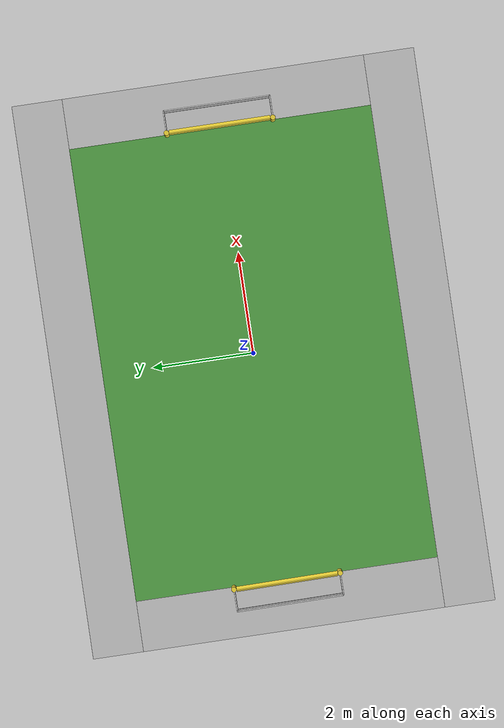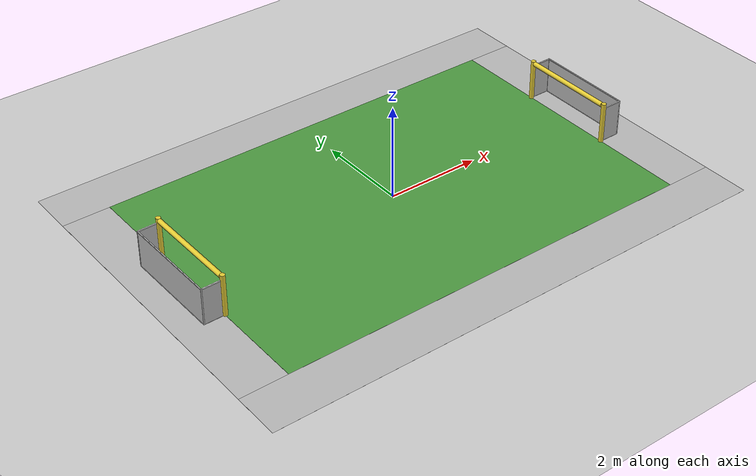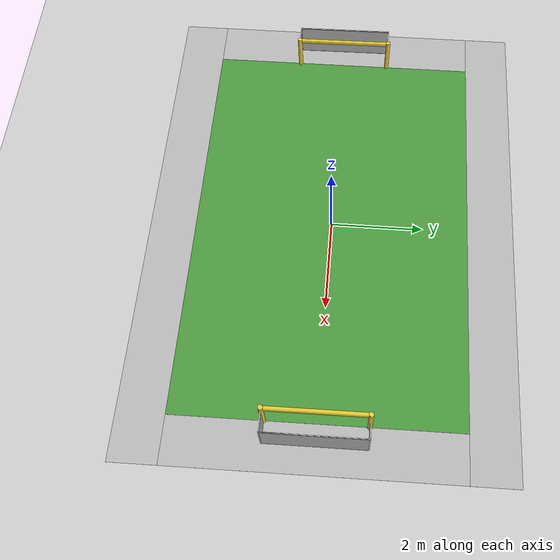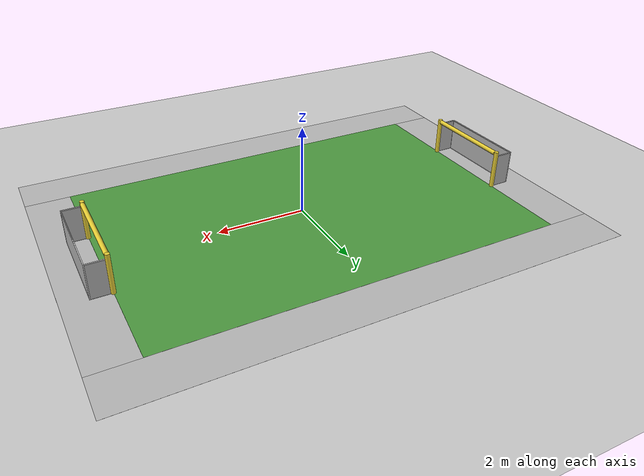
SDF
<sdf version="1.6">
 <world name="default">
  <light name="sun" type="directional">
   <pose>0 0 10 0 -0 0</pose>
   <diffuse>0.8 0.8 0.8 1</diffuse>
   <specular>0.1 0.1 0.1 1</specular>
   <attenuation>
    <range>1000</range>
    <constant>0.9</constant>
    <linear>0.01</linear>
    <quadratic>0.001</quadratic>
   </attenuation>
   <direction>-0.5 0.5 -1</direction>
  </light>
  <model name="ground_plane">
   <static>1</static>
   <link name="link">
    <collision name="collision">
     <geometry><plane><normal>0 0 1</normal><size>100 100</size></plane></geometry>
     <surface>
      <friction><ode><mu>1000</mu><mu2>500</mu2><slip1>1.0</slip1><slip2>1.0</slip2></ode></friction>
     </surface>
    </collision>
    <visual name="visual">
     <cast_shadows>0</cast_shadows>
     <geometry><plane><normal>0 0 1</normal><size>100 100</size></plane></geometry>
     <material>
      <script><uri>file://media/materials/scripts/gazebo.material</uri><name>Gazebo/Grey</name></script>
     </material>
    </visual>
   </link>
  </model>
  <gravity>0 0 -9.8</gravity>
  <magnetic_field>6e-06 2.3e-05 -4.2e-05</magnetic_field>
  <atmosphere type="adiabatic"/>
  <physics name="default_physics" default="0" type="ode">
   <max_step_size>0.001</max_step_size>
   <real_time_factor>1</real_time_factor>
   <real_time_update_rate>1000</real_time_update_rate>
  </physics>
  <scene><ambient>0.4 0.4 0.4 1</ambient><background>0.7 0.7 0.7 1</background><shadows>1</shadows></scene>
  <spherical_coordinates>
   <surface_model>EARTH_WGS84</surface_model>
   <latitude_deg>0</latitude_deg>
   <longitude_deg>0</longitude_deg>
   <elevation>0</elevation>
   <heading_deg>0</heading_deg>
  </spherical_coordinates>
  <model name="RoboCup 3D Simulation Field">
   <static>1</static>
   <link name="field">
    <pose>0 0 0.01 0 -0 0</pose>
    <collision name="collision">
     <geometry><plane><normal>0 0 1</normal><size>30 20</size></plane></geometry>
     <surface>
      <friction><ode><mu>1000</mu><mu2>500</mu2><slip1>1.0</slip1><slip2>1.0</slip2></ode></friction>
     </surface>
    </collision>
    <visual name="base1">
     <pose>0 3.5 0.001 0 -0 0</pose>
     <cast_shadows>0</cast_shadows>
     <geometry><plane><normal>0 0 1</normal><size>11 1</size></plane></geometry>
     <material>
      <script>
       <uri>model://robocup_3Dsim_field/materials/scripts/</uri>
       <uri>model://robocup_3Dsim_field/materials/textures/</uri>
       <name>RoboCup/FieldBorder</name>
      </script>
     </material>
    </visual>
    <visual name="base2">
     <pose>0 -3.5 0.001 0 -0 0</pose>
     <cast_shadows>0</cast_shadows>
     <geometry><plane><normal>0 0 1</normal><size>11 1</size></plane></geometry>
     <material>
      <script>
       <uri>model://robocup_3Dsim_field/materials/scripts/</uri>
       <uri>model://robocup_3Dsim_field/materials/textures/</uri>
       <name>RoboCup/FieldBorder</name>
      </script>
     </material>
    </visual>
    <visual name="base3">
     <pose>5 0 0.001 0 -0 0</pose>
     <cast_shadows>0</cast_shadows>
     <geometry><plane><normal>0 0 1</normal><size>1 6</size></plane></geometry>
     <material>
      <script>
       <uri>model://robocup_3Dsim_field/materials/scripts/</uri>
       <uri>model://robocup_3Dsim_field/materials/textures/</uri>
       <name>RoboCup/FieldBorder</name>
      </script>
     </material>
    </visual>
    <visual name="base4">
     <pose>-5 0 0.001 0 -0 0</pose>
     <cast_shadows>0</cast_shadows>
     <geometry><plane><normal>0 0 1</normal><size>1 6</size></plane></geometry>
     <material>
      <script>
       <uri>model://robocup_3Dsim_field/materials/scripts/</uri>
       <uri>model://robocup_3Dsim_field/materials/textures/</uri>
       <name>RoboCup/FieldBorder</name>
      </script>
     </material>
    </visual>
    <visual name="carpet">
     <cast_shadows>0</cast_shadows>
     <geometry><plane><normal>0 0 1</normal><size>9 6</size></plane></geometry>
     <material>
      <script>
       <uri>model://robocup_3Dsim_field/materials/scripts/</uri>
       <uri>model://robocup_3Dsim_field/materials/textures/</uri>
       <name>RoboCup/Grass</name>
      </script>
     </material>
    </visual>
   </link>
  </model>
  <model name="RoboCup 3D Simulator Goal">
   <static>1</static>
   <link name="left_post">
    <pose>0 1.05 0.45 0 -0 0</pose>
    <collision name="collision">
     <geometry><cylinder><radius>0.05</radius><length>0.9</length></cylinder></geometry>
    </collision>
    <visual name="visual">
     <geometry><cylinder><radius>0.05</radius><length>0.9</length></cylinder></geometry>
     <material>
      <script><uri>file://media/materials/scripts/gazebo.material</uri><name>Gazebo/ZincYellow</name></script>
     </material>
    </visual>
   </link>
   <link name="left_support_horiz_lower">
    <pose>0.24 1.05 0.01 0 -0 0</pose>
    <collision name="collision"><geometry><box><size>0.38 0.02 0.02</size></box></geometry></collision>
    <visual name="visual">
     <geometry><box><size>0.38 0.02 0.02</size></box></geometry>
     <material>
      <script><uri>file://media/materials/scripts/gazebo.material</uri><name>Gazebo/White</name></script>
     </material>
    </visual>
   </link>
   <link name="left_support_horiz_upper">
    <pose>0.24 1.05 0.79 0 -0 0</pose>
    <collision name="collision"><geometry><box><size>0.38 0.02 0.02</size></box></geometry></collision>
    <visual name="visual">
     <geometry><box><size>0.38 0.02 0.02</size></box></geometry>
     <material>
      <script><uri>file://media/materials/scripts/gazebo.material</uri><name>Gazebo/White</name></script>
     </material>
    </visual>
   </link>
   <link name="left_support_vertical">
    <pose>0.44 1.05 0.4 3.14159 1.57079 3.14159</pose>
    <collision name="collision"><geometry><box><size>0.8 0.02 0.02</size></box></geometry></collision>
    <visual name="visual">
     <geometry><box><size>0.8 0.02 0.02</size></box></geometry>
     <material>
      <script><uri>file://media/materials/scripts/gazebo.material</uri><name>Gazebo/White</name></script>
     </material>
    </visual>
   </link>
   <link name="right_support_horiz_lower">
    <pose>0.24 -1.05 0.01 0 -0 0</pose>
    <collision name="collision"><geometry><box><size>0.38 0.02 0.02</size></box></geometry></collision>
    <visual name="visual">
     <geometry><box><size>0.38 0.02 0.02</size></box></geometry>
     <material>
      <script><uri>file://media/materials/scripts/gazebo.material</uri><name>Gazebo/White</name></script>
     </material>
    </visual>
   </link>
   <link name="right_support_horiz_upper">
    <pose>0.24 -1.05 0.79 0 -0 0</pose>
    <collision name="collision"><geometry><box><size>0.38 0.02 0.02</size></box></geometry></collision>
    <visual name="visual">
     <geometry><box><size>0.38 0.02 0.02</size></box></geometry>
     <material>
      <script><uri>file://media/materials/scripts/gazebo.material</uri><name>Gazebo/White</name></script>
     </material>
    </visual>
   </link>
   <link name="right_support_vertical">
    <pose>0.44 -1.05 0.4 3.14159 1.57079 3.14159</pose>
    <collision name="collision"><geometry><box><size>0.8 0.02 0.02</size></box></geometry></collision>
    <visual name="visual">
     <geometry><box><size>0.8 0.02 0.02</size></box></geometry>
     <material>
      <script><uri>file://media/materials/scripts/gazebo.material</uri><name>Gazebo/White</name></script>
     </material>
    </visual>
   </link>
   <link name="center_support_horiz_lower">
    <pose>0.44 0 0.01 3.14159 1.57079 3.14159</pose>
    <collision name="collision"><geometry><box><size>0.02 2.08 0.02</size></box></geometry></collision>
    <visual name="visual">
     <geometry><box><size>0.02 2.08 0.02</size></box></geometry>
     <material>
      <script><uri>file://media/materials/scripts/gazebo.material</uri><name>Gazebo/White</name></script>
     </material>
    </visual>
   </link>
   <link name="center_support_horiz_upper">
    <pose>0.44 0 0.79 3.14159 1.57079 3.14159</pose>
    <collision name="collision"><geometry><box><size>0.02 2.08 0.02</size></box></geometry></collision>
    <visual name="visual">
     <geometry><box><size>0.02 2.08 0.02</size></box></geometry>
     <material>
      <script><uri>file://media/materials/scripts/gazebo.material</uri><name>Gazebo/White</name></script>
     </material>
    </visual>
   </link>
   <link name="right_post">
    <pose>0 -1.05 0.45 0 -0 0</pose>
    <collision name="collision">
     <geometry><cylinder><radius>0.05</radius><length>0.9</length></cylinder></geometry>
    </collision>
    <visual name="visual">
     <geometry><cylinder><radius>0.05</radius><length>0.9</length></cylinder></geometry>
     <material>
      <script><uri>file://media/materials/scripts/gazebo.material</uri><name>Gazebo/ZincYellow</name></script>
     </material>
    </visual>
   </link>
   <link name="crossbar">
    <pose>0 0 0.85 1.57 1.57 0</pose>
    <collision name="collision">
     <geometry><cylinder><radius>0.05</radius><length>2</length></cylinder></geometry>
    </collision>
    <visual name="visual">
     <geometry><cylinder><radius>0.05</radius><length>2</length></cylinder></geometry>
     <material>
      <script><uri>file://media/materials/scripts/gazebo.material</uri><name>Gazebo/ZincYellow</name></script>
     </material>
    </visual>
   </link>
   <link name="center_net">
    <pose>0.44 0 0.4 0 -0 0</pose>
    <collision name="collision"><geometry><box><size>0.01 2.1 0.8</size></box></geometry></collision>
    <visual name="visual">
     <geometry><box><size>0.01 2.1 0.8</size></box></geometry>
     <material>
      <script>
       <uri>model://robocup09_spl_field/materials/scripts/</uri>
       <uri>model://robocup09_spl_field/materials/textures/</uri>
       <name>RoboCup/Net</name>
      </script>
     </material>
    </visual>
   </link>
   <link name="left_net">
    <pose>0.24 1.05 0.4 0 -0 0</pose>
    <collision name="collision"><geometry><box><size>0.38 0.01 0.76</size></box></geometry></collision>
    <visual name="visual">
     <geometry><box><size>0.38 0.01 0.76</size></box></geometry>
     <material>
      <script>
       <uri>model://robocup09_spl_field/materials/scripts/</uri>
       <uri>model://robocup09_spl_field/materials/textures/</uri>
       <name>RoboCup/Net</name>
      </script>
     </material>
    </visual>
   </link>
   <link name="right_net">
    <pose>0.24 -1.05 0.4 0 -0 0</pose>
    <collision name="collision"><geometry><box><size>0.38 0.01 0.76</size></box></geometry></collision>
    <visual name="visual">
     <geometry><box><size>0.38 0.01 0.76</size></box></geometry>
     <material>
      <script>
       <uri>model://robocup09_spl_field/materials/scripts/</uri>
       <uri>model://robocup09_spl_field/materials/textures/</uri>
       <name>RoboCup/Net</name>
      </script>
     </material>
    </visual>
   </link>
   <pose>4.5 0 0 0 -0 0</pose>
  </model>
  <model name="RoboCup 3D Simulator Goal_0">
   <static>1</static>
   <link name="left_post">
    <pose>0 1.05 0.45 0 -0 0</pose>
    <collision name="collision">
     <geometry><cylinder><radius>0.05</radius><length>0.9</length></cylinder></geometry>
    </collision>
    <visual name="visual">
     <geometry><cylinder><radius>0.05</radius><length>0.9</length></cylinder></geometry>
     <material>
      <script><uri>file://media/materials/scripts/gazebo.material</uri><name>Gazebo/ZincYellow</name></script>
     </material>
    </visual>
   </link>
   <link name="left_support_horiz_lower">
    <pose>0.24 1.05 0.01 0 -0 0</pose>
    <collision name="collision"><geometry><box><size>0.38 0.02 0.02</size></box></geometry></collision>
    <visual name="visual">
     <geometry><box><size>0.38 0.02 0.02</size></box></geometry>
     <material>
      <script><uri>file://media/materials/scripts/gazebo.material</uri><name>Gazebo/White</name></script>
     </material>
    </visual>
   </link>
   <link name="left_support_horiz_upper">
    <pose>0.24 1.05 0.79 0 -0 0</pose>
    <collision name="collision"><geometry><box><size>0.38 0.02 0.02</size></box></geometry></collision>
    <visual name="visual">
     <geometry><box><size>0.38 0.02 0.02</size></box></geometry>
     <material>
      <script><uri>file://media/materials/scripts/gazebo.material</uri><name>Gazebo/White</name></script>
     </material>
    </visual>
   </link>
   <link name="left_support_vertical">
    <pose>0.44 1.05 0.4 3.14159 1.57079 3.14159</pose>
    <collision name="collision"><geometry><box><size>0.8 0.02 0.02</size></box></geometry></collision>
    <visual name="visual">
     <geometry><box><size>0.8 0.02 0.02</size></box></geometry>
     <material>
      <script><uri>file://media/materials/scripts/gazebo.material</uri><name>Gazebo/White</name></script>
     </material>
    </visual>
   </link>
   <link name="right_support_horiz_lower">
    <pose>0.24 -1.05 0.01 0 -0 0</pose>
    <collision name="collision"><geometry><box><size>0.38 0.02 0.02</size></box></geometry></collision>
    <visual name="visual">
     <geometry><box><size>0.38 0.02 0.02</size></box></geometry>
     <material>
      <script><uri>file://media/materials/scripts/gazebo.material</uri><name>Gazebo/White</name></script>
     </material>
    </visual>
   </link>
   <link name="right_support_horiz_upper">
    <pose>0.24 -1.05 0.79 0 -0 0</pose>
    <collision name="collision"><geometry><box><size>0.38 0.02 0.02</size></box></geometry></collision>
    <visual name="visual">
     <geometry><box><size>0.38 0.02 0.02</size></box></geometry>
     <material>
      <script><uri>file://media/materials/scripts/gazebo.material</uri><name>Gazebo/White</name></script>
     </material>
    </visual>
   </link>
   <link name="right_support_vertical">
    <pose>0.44 -1.05 0.4 3.14159 1.57079 3.14159</pose>
    <collision name="collision"><geometry><box><size>0.8 0.02 0.02</size></box></geometry></collision>
    <visual name="visual">
     <geometry><box><size>0.8 0.02 0.02</size></box></geometry>
     <material>
      <script><uri>file://media/materials/scripts/gazebo.material</uri><name>Gazebo/White</name></script>
     </material>
    </visual>
   </link>
   <link name="center_support_horiz_lower">
    <pose>0.44 0 0.01 3.14159 1.57079 3.14159</pose>
    <collision name="collision"><geometry><box><size>0.02 2.08 0.02</size></box></geometry></collision>
    <visual name="visual">
     <geometry><box><size>0.02 2.08 0.02</size></box></geometry>
     <material>
      <script><uri>file://media/materials/scripts/gazebo.material</uri><name>Gazebo/White</name></script>
     </material>
    </visual>
   </link>
   <link name="center_support_horiz_upper">
    <pose>0.44 0 0.79 3.14159 1.57079 3.14159</pose>
    <collision name="collision"><geometry><box><size>0.02 2.08 0.02</size></box></geometry></collision>
    <visual name="visual">
     <geometry><box><size>0.02 2.08 0.02</size></box></geometry>
     <material>
      <script><uri>file://media/materials/scripts/gazebo.material</uri><name>Gazebo/White</name></script>
     </material>
    </visual>
   </link>
   <link name="right_post">
    <pose>0 -1.05 0.45 0 -0 0</pose>
    <collision name="collision">
     <geometry><cylinder><radius>0.05</radius><length>0.9</length></cylinder></geometry>
    </collision>
    <visual name="visual">
     <geometry><cylinder><radius>0.05</radius><length>0.9</length></cylinder></geometry>
     <material>
      <script><uri>file://media/materials/scripts/gazebo.material</uri><name>Gazebo/ZincYellow</name></script>
     </material>
    </visual>
   </link>
   <link name="crossbar">
    <pose>0 0 0.85 1.57 1.57 0</pose>
    <collision name="collision">
     <geometry><cylinder><radius>0.05</radius><length>2</length></cylinder></geometry>
    </collision>
    <visual name="visual">
     <geometry><cylinder><radius>0.05</radius><length>2</length></cylinder></geometry>
     <material>
      <script><uri>file://media/materials/scripts/gazebo.material</uri><name>Gazebo/ZincYellow</name></script>
     </material>
    </visual>
   </link>
   <link name="center_net">
    <pose>0.44 0 0.4 0 -0 0</pose>
    <collision name="collision"><geometry><box><size>0.01 2.1 0.8</size></box></geometry></collision>
    <visual name="visual">
     <geometry><box><size>0.01 2.1 0.8</size></box></geometry>
     <material>
      <script>
       <uri>model://robocup09_spl_field/materials/scripts/</uri>
       <uri>model://robocup09_spl_field/materials/textures/</uri>
       <name>RoboCup/Net</name>
      </script>
     </material>
    </visual>
   </link>
   <link name="left_net">
    <pose>0.24 1.05 0.4 0 -0 0</pose>
    <collision name="collision"><geometry><box><size>0.38 0.01 0.76</size></box></geometry></collision>
    <visual name="visual">
     <geometry><box><size>0.38 0.01 0.76</size></box></geometry>
     <material>
      <script>
       <uri>model://robocup09_spl_field/materials/scripts/</uri>
       <uri>model://robocup09_spl_field/materials/textures/</uri>
       <name>RoboCup/Net</name>
      </script>
     </material>
    </visual>
   </link>
   <link name="right_net">
    <pose>0.24 -1.05 0.4 0 -0 0</pose>
    <collision name="collision"><geometry><box><size>0.38 0.01 0.76</size></box></geometry></collision>
    <visual name="visual">
     <geometry><box><size>0.38 0.01 0.76</size></box></geometry>
     <material>
      <script>
       <uri>model://robocup09_spl_field/materials/scripts/</uri>
       <uri>model://robocup09_spl_field/materials/textures/</uri>
       <name>RoboCup/Net</name>
      </script>
     </material>
    </visual>
   </link>
   <pose>-4.5 0 0 0 0 -3.13319</pose>
  </model>
 </world>
</sdf>
